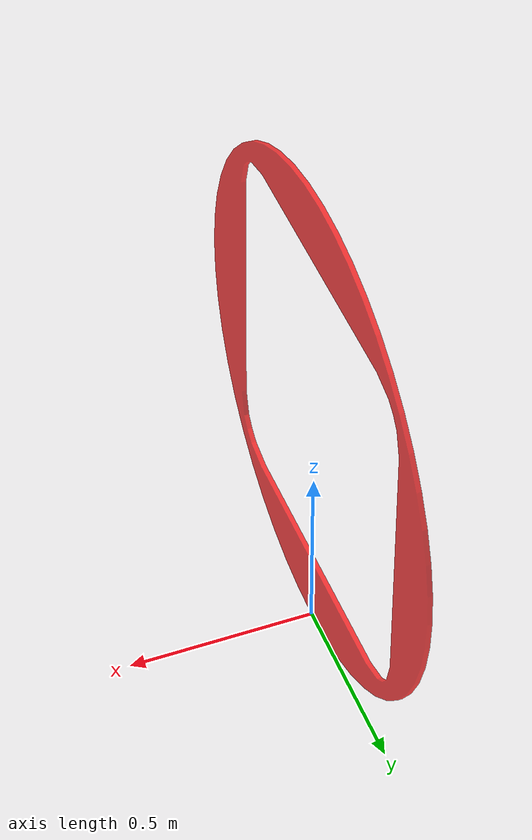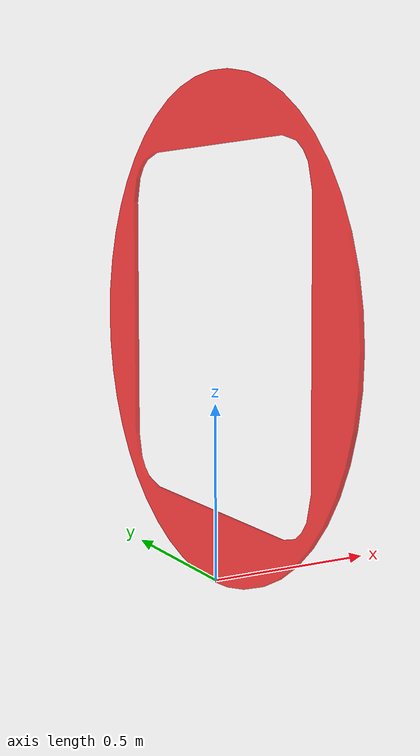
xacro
<?xml version="1.0"?>
<robot xmlns:xacro="http://wiki.ros.org/xacro" name="4040_hatch">
  <xacro:arg name="name" default=""/>
  <xacro:arg name="prefix" default=""/>

  <xacro:include filename="$(find 4040_hatch)/urdf/hatch_face.xacro"/>

  <link name="world"/>

  <xacro:hatch_face name="$(arg name)" prefix="$(arg prefix)" parent="world">
    <origin xyz="0 0 0" rpy="0 0 0"/>
  </xacro:hatch_face>

</robot>

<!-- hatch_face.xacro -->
<robot xmlns:xacro="http://wiki.ros.org/xacro">

  <xacro:macro name="hatch_face" params="
    name:=''
    prefix:=''
    parent:=''
    *origin">

    <joint name="${prefix}4040_hatch_base_joint" type="fixed">
      <parent link="${parent}"/>
      <child link="${prefix}4040_hatch"/>
      <xacro:insert_block name="origin"/>
    </joint>

    <link name="${prefix}4040_hatch">
      <visual>
        <origin xyz="0.0 0.0 0.0" rpy="0 0 0"/>
          <geometry>
            <mesh filename="file://$(find 4040_hatch)/meshes/visual/4040_hatch_face.stl"/>
          </geometry>
        <material name="red">
          <color rgba="1.0 0 0 0.75"/>
        </material>
      </visual>
      <collision>
        <origin xyz="0.0 0.0 0.0" rpy="0 0 0"/>
          <geometry>
            <mesh filename="file://$(find 4040_hatch)/meshes/collision/4040_hatch_face.stl"/>
          </geometry>
        <material name="red">
          <color rgba="1.0 0 0 0.75"/>
        </material>
      </collision>
    </link>

  </xacro:macro>
</robot>
